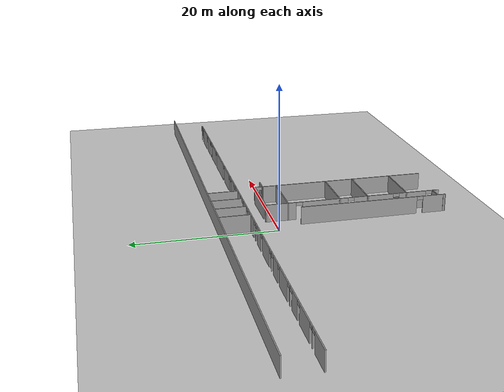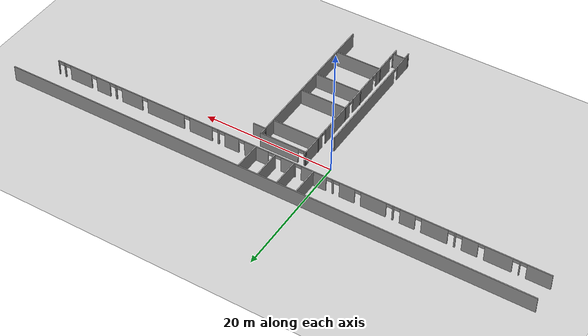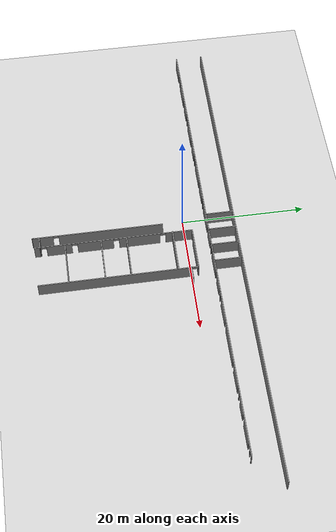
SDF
<sdf version="1.7">
 <world name="default">
  <model name="ground_plane">
   <static>1</static>
   <link name="link">
    <collision name="collision">
     <geometry><plane><normal>0 0 1</normal><size>100 100</size></plane></geometry>
     <surface><friction><ode><mu>100</mu><mu2>50</mu2></ode></friction></surface>
    </collision>
    <visual name="visual">
     <cast_shadows>0</cast_shadows>
     <geometry><plane><normal>0 0 1</normal><size>100 100</size></plane></geometry>
     <material>
      <script><uri>file://media/materials/scripts/gazebo.material</uri><name>Gazebo/Grey</name></script>
     </material>
    </visual>
   </link>
  </model>
  <model name="jec_6th_all_doors">
   <pose>6.89447 -8.09984 0 0 -0 0</pose>
   <link name="Wall_1">
    <collision name="Wall_1_Collision">
     <geometry><box><size>81.75 0.15 2.5</size></box></geometry>
     <pose>0 0 1.25 0 -0 0</pose>
    </collision>
    <visual name="Wall_1_Visual">
     <pose>0 0 1.25 0 -0 0</pose>
     <geometry><box><size>81.75 0.15 2.5</size></box></geometry>
     <material>
      <script><uri>file://media/materials/scripts/gazebo.material</uri><name>Gazebo/Grey</name></script>
      <ambient>1 1 1 1</ambient>
     </material>
     <meta><layer>0</layer></meta>
    </visual>
    <pose>-0.09521 16.2559 0 0 -0 0</pose>
   </link>
   <link name="Wall_120">
    <pose>0.042504 9.21391 0 0 -0 0</pose>
    <visual name="Wall_120_Visual_0">
     <pose>-3.46085 0 1.25 0 -0 0</pose>
     <geometry><box><size>0.328296 0.15 2.5</size></box></geometry>
     <material>
      <script><uri>file://media/materials/scripts/gazebo.material</uri><name>Gazebo/Grey</name></script>
      <ambient>1 1 1 1</ambient>
     </material>
     <meta><layer>0</layer></meta>
    </visual>
    <collision name="Wall_120_Collision_0">
     <geometry><box><size>0.328296 0.15 2.5</size></box></geometry>
     <pose>-3.46085 0 1.25 0 -0 0</pose>
    </collision>
    <visual name="Wall_120_Visual_1">
     <pose>0.614148 0 1.25 0 -0 0</pose>
     <geometry><box><size>6.0217 0.15 2.5</size></box></geometry>
     <material>
      <script><uri>file://media/materials/scripts/gazebo.material</uri><name>Gazebo/Grey</name></script>
      <ambient>1 1 1 1</ambient>
     </material>
     <meta><layer>0</layer></meta>
    </visual>
    <collision name="Wall_120_Collision_1">
     <geometry><box><size>6.0217 0.15 2.5</size></box></geometry>
     <pose>0.614148 0 1.25 0 -0 0</pose>
    </collision>
    <visual name="Wall_120_Visual_2">
     <pose>-2.8467 0 2.25 0 -0 0</pose>
     <geometry><box><size>0.9 0.15 0.5</size></box></geometry>
     <material>
      <script><uri>file://media/materials/scripts/gazebo.material</uri><name>Gazebo/Grey</name></script>
      <ambient>1 1 1 1</ambient>
     </material>
     <meta><layer>0</layer></meta>
    </visual>
    <collision name="Wall_120_Collision_2">
     <geometry><box><size>0.9 0.15 0.5</size></box></geometry>
     <pose>-2.8467 0 2.25 0 -0 0</pose>
    </collision>
   </link>
   <link name="Wall_121">
    <pose>3.5925 8.66391 0 0 -0 -1.5708</pose>
    <visual name="Wall_121_Visual_0">
     <pose>-0.552987 0 1.25 0 -0 0</pose>
     <geometry><box><size>0.144027 0.15 2.5</size></box></geometry>
     <material>
      <script><uri>file://media/materials/scripts/gazebo.material</uri><name>Gazebo/Grey</name></script>
      <ambient>1 1 1 1</ambient>
     </material>
     <meta><layer>0</layer></meta>
    </visual>
    <collision name="Wall_121_Collision_0">
     <geometry><box><size>0.144027 0.15 2.5</size></box></geometry>
     <pose>-0.552987 0 1.25 0 -0 0</pose>
    </collision>
    <visual name="Wall_121_Visual_1">
     <pose>0.522013 0 1.25 0 -0 0</pose>
     <geometry><box><size>0.205973 0.15 2.5</size></box></geometry>
     <material>
      <script><uri>file://media/materials/scripts/gazebo.material</uri><name>Gazebo/Grey</name></script>
      <ambient>1 1 1 1</ambient>
     </material>
     <meta><layer>0</layer></meta>
    </visual>
    <collision name="Wall_121_Collision_1">
     <geometry><box><size>0.205973 0.15 2.5</size></box></geometry>
     <pose>0.522013 0 1.25 0 -0 0</pose>
    </collision>
    <visual name="Wall_121_Visual_2">
     <pose>-0.030973 0 2.25 0 -0 0</pose>
     <geometry><box><size>0.9 0.15 0.5</size></box></geometry>
     <material>
      <script><uri>file://media/materials/scripts/gazebo.material</uri><name>Gazebo/Grey</name></script>
      <ambient>1 1 1 1</ambient>
     </material>
     <meta><layer>0</layer></meta>
    </visual>
    <collision name="Wall_121_Collision_2">
     <geometry><box><size>0.9 0.15 0.5</size></box></geometry>
     <pose>-0.030973 0 2.25 0 -0 0</pose>
    </collision>
   </link>
   <link name="Wall_122">
    <collision name="Wall_122_Collision">
     <geometry><box><size>2 0.15 2.5</size></box></geometry>
     <pose>0 0 1.25 0 -0 0</pose>
    </collision>
    <visual name="Wall_122_Visual">
     <pose>0 0 1.25 0 -0 0</pose>
     <geometry><box><size>2 0.15 2.5</size></box></geometry>
     <material>
      <script><uri>file://media/materials/scripts/gazebo.material</uri><name>Gazebo/Grey</name></script>
      <ambient>1 1 1 1</ambient>
     </material>
     <meta><layer>0</layer></meta>
    </visual>
    <pose>4.5175 8.11391 0 0 -0 0</pose>
   </link>
   <link name="Wall_13">
    <pose>-3.47906 -2.94687 0 0 -0 -1.56846</pose>
    <visual name="Wall_13_Visual_0">
     <pose>-10.0663 0 1.25 0 -0 0</pose>
     <geometry><box><size>4.33904 0.15 2.5</size></box></geometry>
     <material>
      <script><uri>file://media/materials/scripts/gazebo.material</uri><name>Gazebo/Grey</name></script>
      <ambient>1 1 1 1</ambient>
     </material>
     <meta><layer>0</layer></meta>
    </visual>
    <collision name="Wall_13_Collision_0">
     <geometry><box><size>4.33904 0.15 2.5</size></box></geometry>
     <pose>-10.0663 0 1.25 0 -0 0</pose>
    </collision>
    <visual name="Wall_13_Visual_1">
     <pose>-3.70749 0 1.25 0 -0 0</pose>
     <geometry><box><size>6.57857 0.15 2.5</size></box></geometry>
     <material>
      <script><uri>file://media/materials/scripts/gazebo.material</uri><name>Gazebo/Grey</name></script>
      <ambient>1 1 1 1</ambient>
     </material>
     <meta><layer>0</layer></meta>
    </visual>
    <collision name="Wall_13_Collision_1">
     <geometry><box><size>6.57857 0.15 2.5</size></box></geometry>
     <pose>-3.70749 0 1.25 0 -0 0</pose>
    </collision>
    <visual name="Wall_13_Visual_2">
     <pose>3.34972 0 1.25 0 -0 0</pose>
     <geometry><box><size>5.73586 0.15 2.5</size></box></geometry>
     <material>
      <script><uri>file://media/materials/scripts/gazebo.material</uri><name>Gazebo/Grey</name></script>
      <ambient>1 1 1 1</ambient>
     </material>
     <meta><layer>0</layer></meta>
    </visual>
    <collision name="Wall_13_Collision_2">
     <geometry><box><size>5.73586 0.15 2.5</size></box></geometry>
     <pose>3.34972 0 1.25 0 -0 0</pose>
    </collision>
    <visual name="Wall_13_Visual_3">
     <pose>9.12657 0 1.25 0 -0 0</pose>
     <geometry><box><size>4.01783 0.15 2.5</size></box></geometry>
     <material>
      <script><uri>file://media/materials/scripts/gazebo.material</uri><name>Gazebo/Grey</name></script>
      <ambient>1 1 1 1</ambient>
     </material>
     <meta><layer>0</layer></meta>
    </visual>
    <collision name="Wall_13_Collision_3">
     <geometry><box><size>4.01783 0.15 2.5</size></box></geometry>
     <pose>9.12657 0 1.25 0 -0 0</pose>
    </collision>
    <visual name="Wall_13_Visual_4">
     <pose>12.1357 0 1.25 0 -0 0</pose>
     <geometry><box><size>0.200326 0.15 2.5</size></box></geometry>
     <material>
      <script><uri>file://media/materials/scripts/gazebo.material</uri><name>Gazebo/Grey</name></script>
      <ambient>1 1 1 1</ambient>
     </material>
     <meta><layer>0</layer></meta>
    </visual>
    <collision name="Wall_13_Collision_4">
     <geometry><box><size>0.200326 0.15 2.5</size></box></geometry>
     <pose>12.1357 0 1.25 0 -0 0</pose>
    </collision>
    <visual name="Wall_13_Visual_5">
     <pose>-7.44677 0 2.25 0 -0 0</pose>
     <geometry><box><size>0.9 0.15 0.5</size></box></geometry>
     <material>
      <script><uri>file://media/materials/scripts/gazebo.material</uri><name>Gazebo/Grey</name></script>
      <ambient>1 1 1 1</ambient>
     </material>
     <meta><layer>0</layer></meta>
    </visual>
    <collision name="Wall_13_Collision_5">
     <geometry><box><size>0.9 0.15 0.5</size></box></geometry>
     <pose>-7.44677 0 2.25 0 -0 0</pose>
    </collision>
    <visual name="Wall_13_Visual_6">
     <pose>0.031795 0 2.25 0 -0 0</pose>
     <geometry><box><size>0.9 0.15 0.5</size></box></geometry>
     <material>
      <script><uri>file://media/materials/scripts/gazebo.material</uri><name>Gazebo/Grey</name></script>
      <ambient>1 1 1 1</ambient>
     </material>
     <meta><layer>0</layer></meta>
    </visual>
    <collision name="Wall_13_Collision_6">
     <geometry><box><size>0.9 0.15 0.5</size></box></geometry>
     <pose>0.031795 0 2.25 0 -0 0</pose>
    </collision>
    <visual name="Wall_13_Visual_7">
     <pose>6.66765 0 2.25 0 -0 0</pose>
     <geometry><box><size>0.9 0.15 0.5</size></box></geometry>
     <material>
      <script><uri>file://media/materials/scripts/gazebo.material</uri><name>Gazebo/Grey</name></script>
      <ambient>1 1 1 1</ambient>
     </material>
     <meta><layer>0</layer></meta>
    </visual>
    <collision name="Wall_13_Collision_7">
     <geometry><box><size>0.9 0.15 0.5</size></box></geometry>
     <pose>6.66765 0 2.25 0 -0 0</pose>
    </collision>
    <visual name="Wall_13_Visual_8">
     <pose>11.5855 0 2.25 0 -0 0</pose>
     <geometry><box><size>0.9 0.15 0.5</size></box></geometry>
     <material>
      <script><uri>file://media/materials/scripts/gazebo.material</uri><name>Gazebo/Grey</name></script>
      <ambient>1 1 1 1</ambient>
     </material>
     <meta><layer>0</layer></meta>
    </visual>
    <collision name="Wall_13_Collision_8">
     <geometry><box><size>0.9 0.15 0.5</size></box></geometry>
     <pose>11.5855 0 2.25 0 -0 0</pose>
    </collision>
   </link>
   <link name="Wall_14">
    <collision name="Wall_14_Collision">
     <geometry><box><size>2 0.15 2.5</size></box></geometry>
     <pose>0 0 1.25 0 -0 0</pose>
    </collision>
    <visual name="Wall_14_Visual">
     <pose>0 0 1.25 0 -0 0</pose>
     <geometry><box><size>2 0.15 2.5</size></box></geometry>
     <material>
      <script><uri>file://media/materials/scripts/gazebo.material</uri><name>Gazebo/Grey</name></script>
      <ambient>1 1 1 1</ambient>
     </material>
     <meta><layer>0</layer></meta>
    </visual>
    <pose>-4.37563 -15.1077 0 0 -0 3.14159</pose>
   </link>
   <link name="Wall_154">
    <collision name="Wall_154_Collision">
     <geometry><box><size>24.1463 0.15 2.5</size></box></geometry>
     <pose>0 0 1.25 0 -0 0</pose>
    </collision>
    <visual name="Wall_154_Visual">
     <pose>0 0 1.25 0 -0 0</pose>
     <geometry><box><size>24.1463 0.15 2.5</size></box></geometry>
     <material>
      <script><uri>file://media/materials/scripts/gazebo.material</uri><name>Gazebo/Grey</name></script>
      <ambient>1 1 1 1</ambient>
     </material>
     <meta><layer>0</layer></meta>
    </visual>
    <pose>3.64282 -3.88413 0 0 -0 1.57499</pose>
   </link>
   <link name="Wall_156">
    <collision name="Wall_156_Collision">
     <geometry><box><size>7.25 0.15 2.5</size></box></geometry>
     <pose>0 0 1.25 0 -0 0</pose>
    </collision>
    <visual name="Wall_156_Visual">
     <pose>0 0 1.25 0 -0 0</pose>
     <geometry><box><size>7.25 0.15 2.5</size></box></geometry>
     <material>
      <script><uri>file://media/materials/scripts/gazebo.material</uri><name>Gazebo/Grey</name></script>
      <ambient>1 1 1 1</ambient>
     </material>
     <meta><layer>0</layer></meta>
    </visual>
    <pose>-0.017609 6.083 0 0 -0 0</pose>
   </link>
   <link name="Wall_158">
    <collision name="Wall_158_Collision">
     <geometry><box><size>7.25 0.15 2.5</size></box></geometry>
     <pose>0 0 1.25 0 -0 0</pose>
    </collision>
    <visual name="Wall_158_Visual">
     <pose>0 0 1.25 0 -0 0</pose>
     <geometry><box><size>7.25 0.15 2.5</size></box></geometry>
     <material>
      <script><uri>file://media/materials/scripts/gazebo.material</uri><name>Gazebo/Grey</name></script>
      <ambient>1 1 1 1</ambient>
     </material>
     <meta><layer>0</layer></meta>
    </visual>
    <pose>0.052917 -1.32219 0 0 -0 0</pose>
   </link>
   <link name="Wall_160">
    <collision name="Wall_160_Collision">
     <geometry><box><size>7.25 0.15 2.5</size></box></geometry>
     <pose>0 0 1.25 0 -0 0</pose>
    </collision>
    <visual name="Wall_160_Visual">
     <pose>0 0 1.25 0 -0 0</pose>
     <geometry><box><size>7.25 0.15 2.5</size></box></geometry>
     <material>
      <script><uri>file://media/materials/scripts/gazebo.material</uri><name>Gazebo/Grey</name></script>
      <ambient>1 1 1 1</ambient>
     </material>
     <meta><layer>0</layer></meta>
    </visual>
    <pose>-0.017609 -5.39505 0 0 -0 0</pose>
   </link>
   <link name="Wall_162">
    <collision name="Wall_162_Collision">
     <geometry><box><size>7.25 0.15 2.5</size></box></geometry>
     <pose>0 0 1.25 0 -0 0</pose>
    </collision>
    <visual name="Wall_162_Visual">
     <pose>0 0 1.25 0 -0 0</pose>
     <geometry><box><size>7.25 0.15 2.5</size></box></geometry>
     <material>
      <script><uri>file://media/materials/scripts/gazebo.material</uri><name>Gazebo/Grey</name></script>
      <ambient>1 1 1 1</ambient>
     </material>
     <meta><layer>0</layer></meta>
    </visual>
    <pose>0.070548 -11.1605 0 0 -0 0</pose>
   </link>
   <link name="Wall_28">
    <collision name="Wall_28_Collision">
     <geometry><box><size>0.386503 0.15 2.5</size></box></geometry>
     <pose>0 0 1.25 0 -0 0</pose>
    </collision>
    <visual name="Wall_28_Visual">
     <pose>0 0 1.25 0 -0 0</pose>
     <geometry><box><size>0.386503 0.15 2.5</size></box></geometry>
     <material>
      <script><uri>file://media/materials/scripts/gazebo.material</uri><name>Gazebo/Grey</name></script>
      <ambient>1 1 1 1</ambient>
     </material>
     <meta><layer>0</layer></meta>
    </visual>
    <pose>-5.32299 -16.1004 0 0 -0 -1.4481</pose>
   </link>
   <link name="Wall_30">
    <collision name="Wall_30_Collision">
     <geometry><box><size>1 0.15 2.5</size></box></geometry>
     <pose>0 0 1.25 0 -0 0</pose>
    </collision>
    <visual name="Wall_30_Visual">
     <pose>0 0 1.25 0 -0 0</pose>
     <geometry><box><size>1 0.15 2.5</size></box></geometry>
     <material>
      <script><uri>file://media/materials/scripts/gazebo.material</uri><name>Gazebo/Grey</name></script>
      <ambient>1 1 1 1</ambient>
     </material>
     <meta><layer>0</layer></meta>
    </visual>
    <pose>-3.45063 -15.5327 0 0 -0 -1.5708</pose>
   </link>
   <link name="Wall_37">
    <pose>-5.30852 -5.78594 0 0 -0 -1.5708</pose>
    <visual name="Wall_37_Visual_0">
     <pose>-2.13761 0 1.25 0 -0 0</pose>
     <geometry><box><size>16.7248 0.15 2.5</size></box></geometry>
     <material>
      <script><uri>file://media/materials/scripts/gazebo.material</uri><name>Gazebo/Grey</name></script>
      <ambient>1 1 1 1</ambient>
     </material>
     <meta><layer>0</layer></meta>
    </visual>
    <collision name="Wall_37_Collision_0">
     <geometry><box><size>16.7248 0.15 2.5</size></box></geometry>
     <pose>-2.13761 0 1.25 0 -0 0</pose>
    </collision>
    <visual name="Wall_37_Visual_1">
     <pose>8.81239 0 1.25 0 -0 0</pose>
     <geometry><box><size>3.37522 0.15 2.5</size></box></geometry>
     <material>
      <script><uri>file://media/materials/scripts/gazebo.material</uri><name>Gazebo/Grey</name></script>
      <ambient>1 1 1 1</ambient>
     </material>
     <meta><layer>0</layer></meta>
    </visual>
    <collision name="Wall_37_Collision_1">
     <geometry><box><size>3.37522 0.15 2.5</size></box></geometry>
     <pose>8.81239 0 1.25 0 -0 0</pose>
    </collision>
    <visual name="Wall_37_Visual_2">
     <pose>6.67478 0 2.25 0 -0 0</pose>
     <geometry><box><size>0.9 0.15 0.5</size></box></geometry>
     <material>
      <script><uri>file://media/materials/scripts/gazebo.material</uri><name>Gazebo/Grey</name></script>
      <ambient>1 1 1 1</ambient>
     </material>
     <meta><layer>0</layer></meta>
    </visual>
    <collision name="Wall_37_Collision_2">
     <geometry><box><size>0.9 0.15 0.5</size></box></geometry>
     <pose>6.67478 0 2.25 0 -0 0</pose>
    </collision>
   </link>
   <link name="Wall_51">
    <pose>-2.346 11.8526 0 0 -0 0</pose>
    <visual name="Wall_51_Visual_0">
     <pose>-36.8725 0 1.25 0 -0 0</pose>
     <geometry><box><size>3.50504 0.15 2.5</size></box></geometry>
     <material>
      <script><uri>file://media/materials/scripts/gazebo.material</uri><name>Gazebo/Grey</name></script>
      <ambient>1 1 1 1</ambient>
     </material>
     <meta><layer>0</layer></meta>
    </visual>
    <collision name="Wall_51_Collision_0">
     <geometry><box><size>3.50504 0.15 2.5</size></box></geometry>
     <pose>-36.8725 0 1.25 0 -0 0</pose>
    </collision>
    <visual name="Wall_51_Visual_1">
     <pose>-34.1439 0 1.25 0 -0 0</pose>
     <geometry><box><size>0.152097 0.15 2.5</size></box></geometry>
     <material>
      <script><uri>file://media/materials/scripts/gazebo.material</uri><name>Gazebo/Grey</name></script>
      <ambient>1 1 1 1</ambient>
     </material>
     <meta><layer>0</layer></meta>
    </visual>
    <collision name="Wall_51_Collision_1">
     <geometry><box><size>0.152097 0.15 2.5</size></box></geometry>
     <pose>-34.1439 0 1.25 0 -0 0</pose>
    </collision>
    <visual name="Wall_51_Visual_2">
     <pose>-31.2088 0 1.25 0 -0 0</pose>
     <geometry><box><size>3.91813 0.15 2.5</size></box></geometry>
     <material>
      <script><uri>file://media/materials/scripts/gazebo.material</uri><name>Gazebo/Grey</name></script>
      <ambient>1 1 1 1</ambient>
     </material>
     <meta><layer>0</layer></meta>
    </visual>
    <collision name="Wall_51_Collision_2">
     <geometry><box><size>3.91813 0.15 2.5</size></box></geometry>
     <pose>-31.2088 0 1.25 0 -0 0</pose>
    </collision>
    <visual name="Wall_51_Visual_3">
     <pose>-27.2096 0 1.25 0 -0 0</pose>
     <geometry><box><size>2.2802 0.15 2.5</size></box></geometry>
     <material>
      <script><uri>file://media/materials/scripts/gazebo.material</uri><name>Gazebo/Grey</name></script>
      <ambient>1 1 1 1</ambient>
     </material>
     <meta><layer>0</layer></meta>
    </visual>
    <collision name="Wall_51_Collision_3">
     <geometry><box><size>2.2802 0.15 2.5</size></box></geometry>
     <pose>-27.2096 0 1.25 0 -0 0</pose>
    </collision>
    <visual name="Wall_51_Visual_4">
     <pose>-25.0576 0 1.25 0 -0 0</pose>
     <geometry><box><size>0.223831 0.15 2.5</size></box></geometry>
     <material>
      <script><uri>file://media/materials/scripts/gazebo.material</uri><name>Gazebo/Grey</name></script>
      <ambient>1 1 1 1</ambient>
     </material>
     <meta><layer>0</layer></meta>
    </visual>
    <collision name="Wall_51_Collision_4">
     <geometry><box><size>0.223831 0.15 2.5</size></box></geometry>
     <pose>-25.0576 0 1.25 0 -0 0</pose>
    </collision>
    <visual name="Wall_51_Visual_5">
     <pose>-22.1285 0 1.25 0 -0 0</pose>
     <geometry><box><size>3.83444 0.15 2.5</size></box></geometry>
     <material>
      <script><uri>file://media/materials/scripts/gazebo.material</uri><name>Gazebo/Grey</name></script>
      <ambient>1 1 1 1</ambient>
     </material>
     <meta><layer>0</layer></meta>
    </visual>
    <collision name="Wall_51_Collision_5">
     <geometry><box><size>3.83444 0.15 2.5</size></box></geometry>
     <pose>-22.1285 0 1.25 0 -0 0</pose>
    </collision>
    <visual name="Wall_51_Visual_6">
     <pose>-18.1831 0 1.25 0 -0 0</pose>
     <geometry><box><size>2.25629 0.15 2.5</size></box></geometry>
     <material>
      <script><uri>file://media/materials/scripts/gazebo.material</uri><name>Gazebo/Grey</name></script>
      <ambient>1 1 1 1</ambient>
     </material>
     <meta><layer>0</layer></meta>
    </visual>
    <collision name="Wall_51_Collision_6">
     <geometry><box><size>2.25629 0.15 2.5</size></box></geometry>
     <pose>-18.1831 0 1.25 0 -0 0</pose>
    </collision>
    <visual name="Wall_51_Visual_7">
     <pose>-16.043 0 1.25 0 -0 0</pose>
     <geometry><box><size>0.223831 0.15 2.5</size></box></geometry>
     <material>
      <script><uri>file://media/materials/scripts/gazebo.material</uri><name>Gazebo/Grey</name></script>
      <ambient>1 1 1 1</ambient>
     </material>
     <meta><layer>0</layer></meta>
    </visual>
    <collision name="Wall_51_Collision_7">
     <geometry><box><size>0.223831 0.15 2.5</size></box></geometry>
     <pose>-16.043 0 1.25 0 -0 0</pose>
    </collision>
    <visual name="Wall_51_Visual_8">
     <pose>-13.1259 0 1.25 0 -0 0</pose>
     <geometry><box><size>3.81053 0.15 2.5</size></box></geometry>
     <material>
      <script><uri>file://media/materials/scripts/gazebo.material</uri><name>Gazebo/Grey</name></script>
      <ambient>1 1 1 1</ambient>
     </material>
     <meta><layer>0</layer></meta>
    </visual>
    <collision name="Wall_51_Collision_8">
     <geometry><box><size>3.81053 0.15 2.5</size></box></geometry>
     <pose>-13.1259 0 1.25 0 -0 0</pose>
    </collision>
    <visual name="Wall_51_Visual_9">
     <pose>-9.15061 0 1.25 0 -0 0</pose>
     <geometry><box><size>2.33998 0.15 2.5</size></box></geometry>
     <material>
      <script><uri>file://media/materials/scripts/gazebo.material</uri><name>Gazebo/Grey</name></script>
      <ambient>1 1 1 1</ambient>
     </material>
     <meta><layer>0</layer></meta>
    </visual>
    <collision name="Wall_51_Collision_9">
     <geometry><box><size>2.33998 0.15 2.5</size></box></geometry>
     <pose>-9.15061 0 1.25 0 -0 0</pose>
    </collision>
    <visual name="Wall_51_Visual_10">
     <pose>-6.96871 0 1.25 0 -0 0</pose>
     <geometry><box><size>0.223832 0.15 2.5</size></box></geometry>
     <material>
      <script><uri>file://media/materials/scripts/gazebo.material</uri><name>Gazebo/Grey</name></script>
      <ambient>1 1 1 1</ambient>
     </material>
     <meta><layer>0</layer></meta>
    </visual>
    <collision name="Wall_51_Collision_10">
     <geometry><box><size>0.223832 0.15 2.5</size></box></geometry>
     <pose>-6.96871 0 1.25 0 -0 0</pose>
    </collision>
    <visual name="Wall_51_Visual_11">
     <pose>-4.02164 0 1.25 0 -0 0</pose>
     <geometry><box><size>3.87031 0.15 2.5</size></box></geometry>
     <material>
      <script><uri>file://media/materials/scripts/gazebo.material</uri><name>Gazebo/Grey</name></script>
      <ambient>1 1 1 1</ambient>
     </material>
     <meta><layer>0</layer></meta>
    </visual>
    <collision name="Wall_51_Collision_11">
     <geometry><box><size>3.87031 0.15 2.5</size></box></geometry>
     <pose>-4.02164 0 1.25 0 -0 0</pose>
    </collision>
    <visual name="Wall_51_Visual_12">
     <pose>-0.058338 0 1.25 0 -0 0</pose>
     <geometry><box><size>2.25629 0.15 2.5</size></box></geometry>
     <material>
      <script><uri>file://media/materials/scripts/gazebo.material</uri><name>Gazebo/Grey</name></script>
      <ambient>1 1 1 1</ambient>
     </material>
     <meta><layer>0</layer></meta>
    </visual>
    <collision name="Wall_51_Collision_12">
     <geometry><box><size>2.25629 0.15 2.5</size></box></geometry>
     <pose>-0.058338 0 1.25 0 -0 0</pose>
    </collision>
    <visual name="Wall_51_Visual_13">
     <pose>2.0877 0 1.25 0 -0 0</pose>
     <geometry><box><size>0.235787 0.15 2.5</size></box></geometry>
     <material>
      <script><uri>file://media/materials/scripts/gazebo.material</uri><name>Gazebo/Grey</name></script>
      <ambient>1 1 1 1</ambient>
     </material>
     <meta><layer>0</layer></meta>
    </visual>
    <collision name="Wall_51_Collision_13">
     <geometry><box><size>0.235787 0.15 2.5</size></box></geometry>
     <pose>2.0877 0 1.25 0 -0 0</pose>
    </collision>
    <visual name="Wall_51_Visual_14">
     <pose>5.00488 0 1.25 0 -0 0</pose>
     <geometry><box><size>3.79857 0.15 2.5</size></box></geometry>
     <material>
      <script><uri>file://media/materials/scripts/gazebo.material</uri><name>Gazebo/Grey</name></script>
      <ambient>1 1 1 1</ambient>
     </material>
     <meta><layer>0</layer></meta>
    </visual>
    <collision name="Wall_51_Collision_14">
     <geometry><box><size>3.79857 0.15 2.5</size></box></geometry>
     <pose>5.00488 0 1.25 0 -0 0</pose>
    </collision>
    <visual name="Wall_51_Visual_15">
     <pose>8.95623 0 1.25 0 -0 0</pose>
     <geometry><box><size>2.30411 0.15 2.5</size></box></geometry>
     <material>
      <script><uri>file://media/materials/scripts/gazebo.material</uri><name>Gazebo/Grey</name></script>
      <ambient>1 1 1 1</ambient>
     </material>
     <meta><layer>0</layer></meta>
    </visual>
    <collision name="Wall_51_Collision_15">
     <geometry><box><size>2.30411 0.15 2.5</size></box></geometry>
     <pose>8.95623 0 1.25 0 -0 0</pose>
    </collision>
    <visual name="Wall_51_Visual_16">
     <pose>11.1381 0 1.25 0 -0 0</pose>
     <geometry><box><size>0.259698 0.15 2.5</size></box></geometry>
     <material>
      <script><uri>file://media/materials/scripts/gazebo.material</uri><name>Gazebo/Grey</name></script>
      <ambient>1 1 1 1</ambient>
     </material>
     <meta><layer>0</layer></meta>
    </visual>
    <collision name="Wall_51_Collision_16">
     <geometry><box><size>0.259698 0.15 2.5</size></box></geometry>
     <pose>11.1381 0 1.25 0 -0 0</pose>
    </collision>
    <visual name="Wall_51_Visual_17">
     <pose>14.0314 0 1.25 0 -0 0</pose>
     <geometry><box><size>3.72684 0.15 2.5</size></box></geometry>
     <material>
      <script><uri>file://media/materials/scripts/gazebo.material</uri><name>Gazebo/Grey</name></script>
      <ambient>1 1 1 1</ambient>
     </material>
     <meta><layer>0</layer></meta>
    </visual>
    <collision name="Wall_51_Collision_17">
     <geometry><box><size>3.72684 0.15 2.5</size></box></geometry>
     <pose>14.0314 0 1.25 0 -0 0</pose>
    </collision>
    <visual name="Wall_51_Visual_18">
     <pose>19.8957 0 1.25 0 -0 0</pose>
     <geometry><box><size>6.20166 0.15 2.5</size></box></geometry>
     <material>
      <script><uri>file://media/materials/scripts/gazebo.material</uri><name>Gazebo/Grey</name></script>
      <ambient>1 1 1 1</ambient>
     </material>
     <meta><layer>0</layer></meta>
    </visual>
    <collision name="Wall_51_Collision_18">
     <geometry><box><size>6.20166 0.15 2.5</size></box></geometry>
     <pose>19.8957 0 1.25 0 -0 0</pose>
    </collision>
    <visual name="Wall_51_Visual_19">
     <pose>25.6583 0 1.25 0 -0 0</pose>
     <geometry><box><size>3.52359 0.15 2.5</size></box></geometry>
     <material>
      <script><uri>file://media/materials/scripts/gazebo.material</uri><name>Gazebo/Grey</name></script>
      <ambient>1 1 1 1</ambient>
     </material>
     <meta><layer>0</layer></meta>
    </visual>
    <collision name="Wall_51_Collision_19">
     <geometry><box><size>3.52359 0.15 2.5</size></box></geometry>
     <pose>25.6583 0 1.25 0 -0 0</pose>
    </collision>
    <visual name="Wall_51_Visual_20">
     <pose>28.4499 0 1.25 0 -0 0</pose>
     <geometry><box><size>0.259698 0.15 2.5</size></box></geometry>
     <material>
      <script><uri>file://media/materials/scripts/gazebo.material</uri><name>Gazebo/Grey</name></script>
      <ambient>1 1 1 1</ambient>
     </material>
     <meta><layer>0</layer></meta>
    </visual>
    <collision name="Wall_51_Collision_20">
     <geometry><box><size>0.259698 0.15 2.5</size></box></geometry>
     <pose>28.4499 0 1.25 0 -0 0</pose>
    </collision>
    <visual name="Wall_51_Visual_21">
     <pose>30.6557 0 1.25 0 -0 0</pose>
     <geometry><box><size>2.35194 0.15 2.5</size></box></geometry>
     <material>
      <script><uri>file://media/materials/scripts/gazebo.material</uri><name>Gazebo/Grey</name></script>
      <ambient>1 1 1 1</ambient>
     </material>
     <meta><layer>0</layer></meta>
    </visual>
    <collision name="Wall_51_Collision_21">
     <geometry><box><size>2.35194 0.15 2.5</size></box></geometry>
     <pose>30.6557 0 1.25 0 -0 0</pose>
    </collision>
    <visual name="Wall_51_Visual_22">
     <pose>34.5892 0 1.25 0 -0 0</pose>
     <geometry><box><size>3.71488 0.15 2.5</size></box></geometry>
     <material>
      <script><uri>file://media/materials/scripts/gazebo.material</uri><name>Gazebo/Grey</name></script>
      <ambient>1 1 1 1</ambient>
     </material>
     <meta><layer>0</layer></meta>
    </visual>
    <collision name="Wall_51_Collision_22">
     <geometry><box><size>3.71488 0.15 2.5</size></box></geometry>
     <pose>34.5892 0 1.25 0 -0 0</pose>
    </collision>
    <visual name="Wall_51_Visual_23">
     <pose>37.4585 0 1.25 0 -0 0</pose>
     <geometry><box><size>0.223833 0.15 2.5</size></box></geometry>
     <material>
      <script><uri>file://media/materials/scripts/gazebo.material</uri><name>Gazebo/Grey</name></script>
      <ambient>1 1 1 1</ambient>
     </material>
     <meta><layer>0</layer></meta>
    </visual>
    <collision name="Wall_51_Collision_23">
     <geometry><box><size>0.223833 0.15 2.5</size></box></geometry>
     <pose>37.4585 0 1.25 0 -0 0</pose>
    </collision>
    <visual name="Wall_51_Visual_24">
     <pose>38.5477 0 1.25 0 -0 0</pose>
     <geometry><box><size>0.154575 0.15 2.5</size></box></geometry>
     <material>
      <script><uri>file://media/materials/scripts/gazebo.material</uri><name>Gazebo/Grey</name></script>
      <ambient>1 1 1 1</ambient>
     </material>
     <meta><layer>0</layer></meta>
    </visual>
    <collision name="Wall_51_Collision_24">
     <geometry><box><size>0.154575 0.15 2.5</size></box></geometry>
     <pose>38.5477 0 1.25 0 -0 0</pose>
    </collision>
    <visual name="Wall_51_Visual_25">
     <pose>-34.67 0 2.25 0 -0 0</pose>
     <geometry><box><size>0.9 0.15 0.5</size></box></geometry>
     <material>
      <script><uri>file://media/materials/scripts/gazebo.material</uri><name>Gazebo/Grey</name></script>
      <ambient>1 1 1 1</ambient>
     </material>
     <meta><layer>0</layer></meta>
    </visual>
    <collision name="Wall_51_Collision_25">
     <geometry><box><size>0.9 0.15 0.5</size></box></geometry>
     <pose>-34.67 0 2.25 0 -0 0</pose>
    </collision>
    <visual name="Wall_51_Visual_26">
     <pose>-33.6179 0 2.25 0 -0 0</pose>
     <geometry><box><size>0.9 0.15 0.5</size></box></geometry>
     <material>
      <script><uri>file://media/materials/scripts/gazebo.material</uri><name>Gazebo/Grey</name></script>
      <ambient>1 1 1 1</ambient>
     </material>
     <meta><layer>0</layer></meta>
    </visual>
    <collision name="Wall_51_Collision_26">
     <geometry><box><size>0.9 0.15 0.5</size></box></geometry>
     <pose>-33.6179 0 2.25 0 -0 0</pose>
    </collision>
    <visual name="Wall_51_Visual_27">
     <pose>-28.7997 0 2.25 0 -0 0</pose>
     <geometry><box><size>0.9 0.15 0.5</size></box></geometry>
     <material>
      <script><uri>file://media/materials/scripts/gazebo.material</uri><name>Gazebo/Grey</name></script>
      <ambient>1 1 1 1</ambient>
     </material>
     <meta><layer>0</layer></meta>
    </visual>
    <collision name="Wall_51_Collision_27">
     <geometry><box><size>0.9 0.15 0.5</size></box></geometry>
     <pose>-28.7997 0 2.25 0 -0 0</pose>
    </collision>
    <visual name="Wall_51_Visual_28">
     <pose>-25.6195 0 2.25 0 -0 0</pose>
     <geometry><box><size>0.9 0.15 0.5</size></box></geometry>
     <material>
      <script><uri>file://media/materials/scripts/gazebo.material</uri><name>Gazebo/Grey</name></script>
      <ambient>1 1 1 1</ambient>
     </material>
     <meta><layer>0</layer></meta>
    </visual>
    <collision name="Wall_51_Collision_28">
     <geometry><box><size>0.9 0.15 0.5</size></box></geometry>
     <pose>-25.6195 0 2.25 0 -0 0</pose>
    </collision>
    <visual name="Wall_51_Visual_29">
     <pose>-24.4957 0 2.25 0 -0 0</pose>
     <geometry><box><size>0.9 0.15 0.5</size></box></geometry>
     <material>
      <script><uri>file://media/materials/scripts/gazebo.material</uri><name>Gazebo/Grey</name></script>
      <ambient>1 1 1 1</ambient>
     </material>
     <meta><layer>0</layer></meta>
    </visual>
    <collision name="Wall_51_Collision_29">
     <geometry><box><size>0.9 0.15 0.5</size></box></geometry>
     <pose>-24.4957 0 2.25 0 -0 0</pose>
    </collision>
    <visual name="Wall_51_Visual_30">
     <pose>-19.7613 0 2.25 0 -0 0</pose>
     <geometry><box><size>0.9 0.15 0.5</size></box></geometry>
     <material>
      <script><uri>file://media/materials/scripts/gazebo.material</uri><name>Gazebo/Grey</name></script>
      <ambient>1 1 1 1</ambient>
     </material>
     <meta><layer>0</layer></meta>
    </visual>
    <collision name="Wall_51_Collision_30">
     <geometry><box><size>0.9 0.15 0.5</size></box></geometry>
     <pose>-19.7613 0 2.25 0 -0 0</pose>
    </collision>
    <visual name="Wall_51_Visual_31">
     <pose>-16.605 0 2.25 0 -0 0</pose>
     <geometry><box><size>0.9 0.15 0.5</size></box></geometry>
     <material>
      <script><uri>file://media/materials/scripts/gazebo.material</uri><name>Gazebo/Grey</name></script>
      <ambient>1 1 1 1</ambient>
     </material>
     <meta><layer>0</layer></meta>
    </visual>
    <collision name="Wall_51_Collision_31">
     <geometry><box><size>0.9 0.15 0.5</size></box></geometry>
     <pose>-16.605 0 2.25 0 -0 0</pose>
    </collision>
    <visual name="Wall_51_Visual_32">
     <pose>-15.4811 0 2.25 0 -0 0</pose>
     <geometry><box><size>0.9 0.15 0.5</size></box></geometry>
     <material>
      <script><uri>file://media/materials/scripts/gazebo.material</uri><name>Gazebo/Grey</name></script>
      <ambient>1 1 1 1</ambient>
     </material>
     <meta><layer>0</layer></meta>
    </visual>
    <collision name="Wall_51_Collision_32">
     <geometry><box><size>0.9 0.15 0.5</size></box></geometry>
     <pose>-15.4811 0 2.25 0 -0 0</pose>
    </collision>
    <visual name="Wall_51_Visual_33">
     <pose>-10.7706 0 2.25 0 -0 0</pose>
     <geometry><box><size>0.9 0.15 0.5</size></box></geometry>
     <material>
      <script><uri>file://media/materials/scripts/gazebo.material</uri><name>Gazebo/Grey</name></script>
      <ambient>1 1 1 1</ambient>
     </material>
     <meta><layer>0</layer></meta>
    </visual>
    <collision name="Wall_51_Collision_33">
     <geometry><box><size>0.9 0.15 0.5</size></box></geometry>
     <pose>-10.7706 0 2.25 0 -0 0</pose>
    </collision>
    <visual name="Wall_51_Visual_34">
     <pose>-7.53062 0 2.25 0 -0 0</pose>
     <geometry><box><size>0.9 0.15 0.5</size></box></geometry>
     <material>
      <script><uri>file://media/materials/scripts/gazebo.material</uri><name>Gazebo/Grey</name></script>
      <ambient>1 1 1 1</ambient>
     </material>
     <meta><layer>0</layer></meta>
    </visual>
    <collision name="Wall_51_Collision_34">
     <geometry><box><size>0.9 0.15 0.5</size></box></geometry>
     <pose>-7.53062 0 2.25 0 -0 0</pose>
    </collision>
    <visual name="Wall_51_Visual_35">
     <pose>-6.40679 0 2.25 0 -0 0</pose>
     <geometry><box><size>0.9 0.15 0.5</size></box></geometry>
     <material>
      <script><uri>file://media/materials/scripts/gazebo.material</uri><name>Gazebo/Grey</name></script>
      <ambient>1 1 1 1</ambient>
     </material>
     <meta><layer>0</layer></meta>
    </visual>
    <collision name="Wall_51_Collision_35">
     <geometry><box><size>0.9 0.15 0.5</size></box></geometry>
     <pose>-6.40679 0 2.25 0 -0 0</pose>
    </collision>
    <visual name="Wall_51_Visual_36">
     <pose>-1.63648 0 2.25 0 -0 0</pose>
     <geometry><box><size>0.9 0.15 0.5</size></box></geometry>
     <material>
      <script><uri>file://media/materials/scripts/gazebo.material</uri><name>Gazebo/Grey</name></script>
      <ambient>1 1 1 1</ambient>
     </material>
     <meta><layer>0</layer></meta>
    </visual>
    <collision name="Wall_51_Collision_36">
     <geometry><box><size>0.9 0.15 0.5</size></box></geometry>
     <pose>-1.63648 0 2.25 0 -0 0</pose>
    </collision>
    <visual name="Wall_51_Visual_37">
     <pose>1.51981 0 2.25 0 -0 0</pose>
     <geometry><box><size>0.9 0.15 0.5</size></box></geometry>
     <material>
      <script><uri>file://media/materials/scripts/gazebo.material</uri><name>Gazebo/Grey</name></script>
      <ambient>1 1 1 1</ambient>
     </material>
     <meta><layer>0</layer></meta>
    </visual>
    <collision name="Wall_51_Collision_37">
     <geometry><box><size>0.9 0.15 0.5</size></box></geometry>
     <pose>1.51981 0 2.25 0 -0 0</pose>
    </collision>
    <visual name="Wall_51_Visual_38">
     <pose>2.6556 0 2.25 0 -0 0</pose>
     <geometry><box><size>0.9 0.15 0.5</size></box></geometry>
     <material>
      <script><uri>file://media/materials/scripts/gazebo.material</uri><name>Gazebo/Grey</name></script>
      <ambient>1 1 1 1</ambient>
     </material>
     <meta><layer>0</layer></meta>
    </visual>
    <collision name="Wall_51_Collision_38">
     <geometry><box><size>0.9 0.15 0.5</size></box></geometry>
     <pose>2.6556 0 2.25 0 -0 0</pose>
    </collision>
    <visual name="Wall_51_Visual_39">
     <pose>7.35417 0 2.25 0 -0 0</pose>
     <geometry><box><size>0.9 0.15 0.5</size></box></geometry>
     <material>
      <script><uri>file://media/materials/scripts/gazebo.material</uri><name>Gazebo/Grey</name></script>
      <ambient>1 1 1 1</ambient>
     </material>
     <meta><layer>0</layer></meta>
    </visual>
    <collision name="Wall_51_Collision_39">
     <geometry><box><size>0.9 0.15 0.5</size></box></geometry>
     <pose>7.35417 0 2.25 0 -0 0</pose>
    </collision>
    <visual name="Wall_51_Visual_40">
     <pose>10.5583 0 2.25 0 -0 0</pose>
     <geometry><box><size>0.9 0.15 0.5</size></box></geometry>
     <material>
      <script><uri>file://media/materials/scripts/gazebo.material</uri><name>Gazebo/Grey</name></script>
      <ambient>1 1 1 1</ambient>
     </material>
     <meta><layer>0</layer></meta>
    </visual>
    <collision name="Wall_51_Collision_40">
     <geometry><box><size>0.9 0.15 0.5</size></box></geometry>
     <pose>10.5583 0 2.25 0 -0 0</pose>
    </collision>
    <visual name="Wall_51_Visual_41">
     <pose>11.718 0 2.25 0 -0 0</pose>
     <geometry><box><size>0.9 0.15 0.5</size></box></geometry>
     <material>
      <script><uri>file://media/materials/scripts/gazebo.material</uri><name>Gazebo/Grey</name></script>
      <ambient>1 1 1 1</ambient>
     </material>
     <meta><layer>0</layer></meta>
    </visual>
    <collision name="Wall_51_Collision_41">
     <geometry><box><size>0.9 0.15 0.5</size></box></geometry>
     <pose>11.718 0 2.25 0 -0 0</pose>
    </collision>
    <visual name="Wall_51_Visual_42">
     <pose>16.3448 0 2.25 0 -0 0</pose>
     <geometry><box><size>0.9 0.15 0.5</size></box></geometry>
     <material>
      <script><uri>file://media/materials/scripts/gazebo.material</uri><name>Gazebo/Grey</name></script>
      <ambient>1 1 1 1</ambient>
     </material>
     <meta><layer>0</layer></meta>
    </visual>
    <collision name="Wall_51_Collision_42">
     <geometry><box><size>0.9 0.15 0.5</size></box></geometry>
     <pose>16.3448 0 2.25 0 -0 0</pose>
    </collision>
    <visual name="Wall_51_Visual_43">
     <pose>23.4465 0 2.25 0 -0 0</pose>
     <geometry><box><size>0.9 0.15 0.5</size></box></geometry>
     <material>
      <script><uri>file://media/materials/scripts/gazebo.material</uri><name>Gazebo/Grey</name></script>
      <ambient>1 1 1 1</ambient>
     </material>
     <meta><layer>0</layer></meta>
    </visual>
    <collision name="Wall_51_Collision_43">
     <geometry><box><size>0.9 0.15 0.5</size></box></geometry>
     <pose>23.4465 0 2.25 0 -0 0</pose>
    </collision>
    <visual name="Wall_51_Visual_44">
     <pose>27.8701 0 2.25 0 -0 0</pose>
     <geometry><box><size>0.9 0.15 0.5</size></box></geometry>
     <material>
      <script><uri>file://media/materials/scripts/gazebo.material</uri><name>Gazebo/Grey</name></script>
      <ambient>1 1 1 1</ambient>
     </material>
     <meta><layer>0</layer></meta>
    </visual>
    <collision name="Wall_51_Collision_44">
     <geometry><box><size>0.9 0.15 0.5</size></box></geometry>
     <pose>27.8701 0 2.25 0 -0 0</pose>
    </collision>
    <visual name="Wall_51_Visual_45">
     <pose>29.0298 0 2.25 0 -0 0</pose>
     <geometry><box><size>0.9 0.15 0.5</size></box></geometry>
     <material>
      <script><uri>file://media/materials/scripts/gazebo.material</uri><name>Gazebo/Grey</name></script>
      <ambient>1 1 1 1</ambient>
     </material>
     <meta><layer>0</layer></meta>
    </visual>
    <collision name="Wall_51_Collision_45">
     <geometry><box><size>0.9 0.15 0.5</size></box></geometry>
     <pose>29.0298 0 2.25 0 -0 0</pose>
    </collision>
    <visual name="Wall_51_Visual_46">
     <pose>32.2817 0 2.25 0 -0 0</pose>
     <geometry><box><size>0.9 0.15 0.5</size></box></geometry>
     <material>
      <script><uri>file://media/materials/scripts/gazebo.material</uri><name>Gazebo/Grey</name></script>
      <ambient>1 1 1 1</ambient>
     </material>
     <meta><layer>0</layer></meta>
    </visual>
    <collision name="Wall_51_Collision_46">
     <geometry><box><size>0.9 0.15 0.5</size></box></geometry>
     <pose>32.2817 0 2.25 0 -0 0</pose>
    </collision>
    <visual name="Wall_51_Visual_47">
     <pose>36.8966 0 2.25 0 -0 0</pose>
     <geometry><box><size>0.9 0.15 0.5</size></box></geometry>
     <material>
      <script><uri>file://media/materials/scripts/gazebo.material</uri><name>Gazebo/Grey</name></script>
      <ambient>1 1 1 1</ambient>
     </material>
     <meta><layer>0</layer></meta>
    </visual>
    <collision name="Wall_51_Collision_47">
     <geometry><box><size>0.9 0.15 0.5</size></box></geometry>
     <pose>36.8966 0 2.25 0 -0 0</pose>
    </collision>
    <visual name="Wall_51_Visual_48">
     <pose>38.0204 0 2.25 0 -0 0</pose>
     <geometry><box><size>0.9 0.15 0.5</size></box></geometry>
     <material>
      <script><uri>file://media/materials/scripts/gazebo.material</uri><name>Gazebo/Grey</name></script>
      <ambient>1 1 1 1</ambient>
     </material>
     <meta><layer>0</layer></meta>
    </visual>
    <collision name="Wall_51_Collision_48">
     <geometry><box><size>0.9 0.15 0.5</size></box></geometry>
     <pose>38.0204 0 2.25 0 -0 0</pose>
    </collision>
   </link>
   <link name="Wall_88">
    <collision name="Wall_88_Collision">
     <geometry><box><size>4.5 0.15 2.5</size></box></geometry>
     <pose>0 0 1.25 0 -0 0</pose>
    </collision>
    <visual name="Wall_88_Visual">
     <pose>0 0 1.25 0 -0 0</pose>
     <geometry><box><size>4.5 0.15 2.5</size></box></geometry>
     <material>
      <script><uri>file://media/materials/scripts/gazebo.material</uri><name>Gazebo/Grey</name></script>
      <ambient>1 1 1 1</ambient>
     </material>
     <meta><layer>0</layer></meta>
    </visual>
    <pose>-6.29264 14.0654 0 0 -0 1.5708</pose>
   </link>
   <link name="Wall_90">
    <collision name="Wall_90_Collision">
     <geometry><box><size>4.5 0.15 2.5</size></box></geometry>
     <pose>0 0 1.25 0 -0 0</pose>
    </collision>
    <visual name="Wall_90_Visual">
     <pose>0 0 1.25 0 -0 0</pose>
     <geometry><box><size>4.5 0.15 2.5</size></box></geometry>
     <material>
      <script><uri>file://media/materials/scripts/gazebo.material</uri><name>Gazebo/Grey</name></script>
      <ambient>1 1 1 1</ambient>
     </material>
     <meta><layer>0</layer></meta>
    </visual>
    <pose>-3.29182 14.0794 0 0 -0 1.5708</pose>
   </link>
   <link name="Wall_92">
    <collision name="Wall_92_Collision">
     <geometry><box><size>4.5 0.15 2.5</size></box></geometry>
     <pose>0 0 1.25 0 -0 0</pose>
    </collision>
    <visual name="Wall_92_Visual">
     <pose>0 0 1.25 0 -0 0</pose>
     <geometry><box><size>4.5 0.15 2.5</size></box></geometry>
     <material>
      <script><uri>file://media/materials/scripts/gazebo.material</uri><name>Gazebo/Grey</name></script>
      <ambient>1 1 1 1</ambient>
     </material>
     <meta><layer>0</layer></meta>
    </visual>
    <pose>-0.305037 14.0233 0 0 -0 1.5708</pose>
   </link>
   <link name="Wall_94">
    <collision name="Wall_94_Collision">
     <geometry><box><size>4.5 0.15 2.5</size></box></geometry>
     <pose>0 0 1.25 0 -0 0</pose>
    </collision>
    <visual name="Wall_94_Visual">
     <pose>0 0 1.25 0 -0 0</pose>
     <geometry><box><size>4.5 0.15 2.5</size></box></geometry>
     <material>
      <script><uri>file://media/materials/scripts/gazebo.material</uri><name>Gazebo/Grey</name></script>
      <ambient>1 1 1 1</ambient>
     </material>
     <meta><layer>0</layer></meta>
    </visual>
    <pose>2.75186 14.0654 0 0 -0 1.5708</pose>
   </link>
   <static>1</static>
  </model>
 </world>
</sdf>
